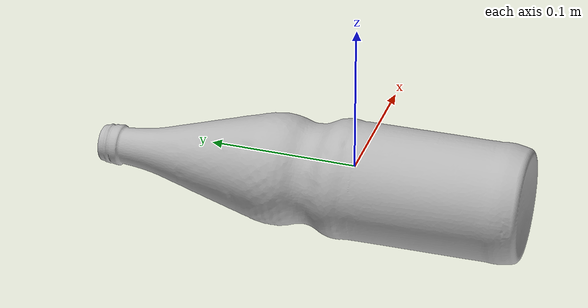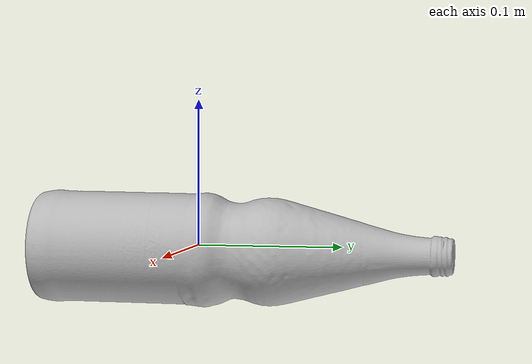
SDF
<?xml version='1.0'?>
<sdf version="1.4">
  <model name="Sprudelflasche">
    <static>false</static>
    <link name="link">
      <inertial>
        <pose>-0.010038280581299219 -0.002512344811829068 -0.004443559420449967 -1.5883044975608334 0.8267755265734034 8.784812380871835e-05</pose>
        <mass>0.10765333342743844</mass>
        <inertia>
          <ixx>0.0005732654579415252</ixx>
          <ixy>-7.347825798187321e-20</ixy>
          <ixz>-8.885875551309203e-21</ixz>
          <iyy>0.0005723282099830893</iyy>
          <iyz>1.4413714284085054e-21</iyz>
          <izz>7.399802224144747e-05</izz>
        </inertia>
      </inertial>
      <collision name="collision">
        <geometry>
          <mesh>
            <!-- Use a downsampled mesh for collisions -->
            <uri>model:///Sprudelflasche/Sprudelflasche_250_collision.obj</uri>
	        </mesh>
        </geometry>
        <surface>
      </surface>
      </collision>
      <visual name="visual">
        <geometry>
          <mesh>
            <uri>model:///Sprudelflasche/Sprudelflasche_25k_tex.obj</uri>
	        </mesh>
        </geometry>
        <material>
          <script>
            <uri>model:///Sprudelflasche/Sprudelflasche.material</uri>
            <name>Sprudelflasche</name>
          </script>
        </material>
      </visual>
    </link>
  </model>
</sdf>
